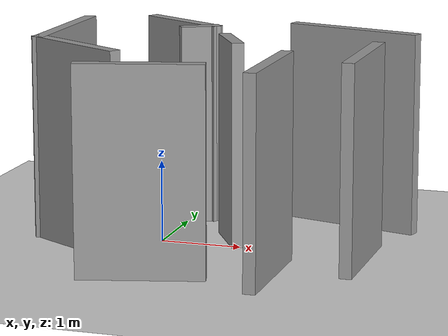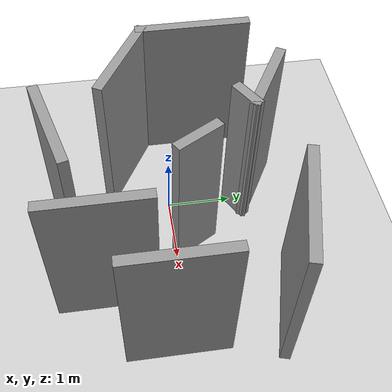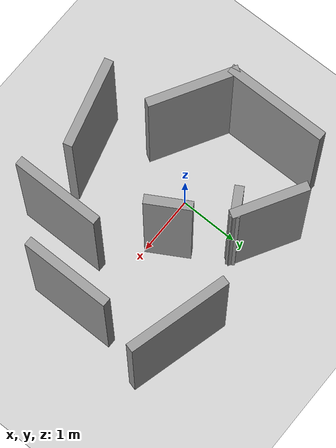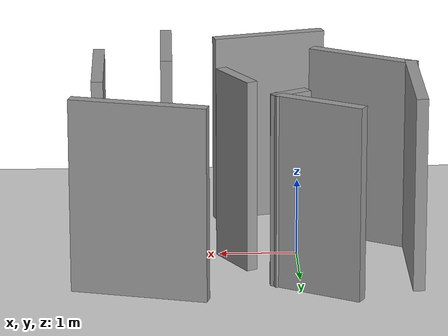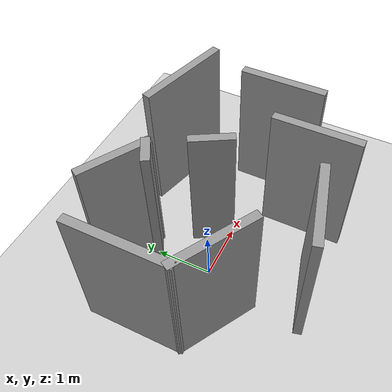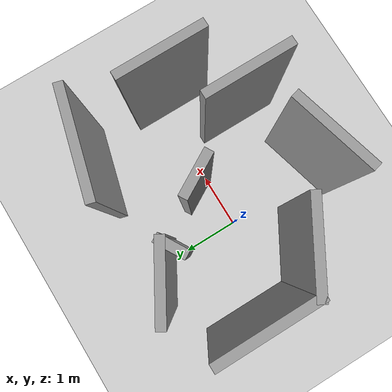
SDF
<sdf version="1.7">
 <world name="default">
  <light name="sun" type="directional">
   <pose>0 0 10 0 -0 0</pose>
   <diffuse>0.8 0.8 0.8 1</diffuse>
   <specular>0.2 0.2 0.2 1</specular>
   <attenuation>
    <range>1000</range>
    <constant>0.9</constant>
    <linear>0.01</linear>
    <quadratic>0.001</quadratic>
   </attenuation>
   <direction>-0.5 0.1 -0.9</direction>
   <spot><inner_angle>0</inner_angle><outer_angle>0</outer_angle><falloff>0</falloff></spot>
  </light>
  <model name="ground_plane">
   <static>1</static>
   <link name="link">
    <collision name="collision">
     <geometry><plane><normal>0 0 1</normal><size>100 100</size></plane></geometry>
     <surface>
      <contact><collide_bitmask>65535</collide_bitmask></contact>
      <friction><ode><mu>100</mu><mu2>50</mu2></ode></friction>
     </surface>
    </collision>
    <visual name="visual">
     <cast_shadows>0</cast_shadows>
     <geometry><plane><normal>0 0 1</normal><size>100 100</size></plane></geometry>
     <material>
      <script><uri>file://media/materials/scripts/gazebo.material</uri><name>Gazebo/Grey</name></script>
     </material>
    </visual>
   </link>
  </model>
  <gravity>0 0 -9.8</gravity>
  <magnetic_field>6e-06 2.3e-05 -4.2e-05</magnetic_field>
  <atmosphere type="adiabatic"/>
  <physics type="ode">
   <max_step_size>0.001</max_step_size>
   <real_time_factor>1</real_time_factor>
   <real_time_update_rate>1000</real_time_update_rate>
  </physics>
  <scene><ambient>0.4 0.4 0.4 1</ambient><background>0.7 0.7 0.7 1</background><shadows>1</shadows></scene>
  <audio><device>default</device></audio>
  <spherical_coordinates>
   <surface_model>EARTH_WGS84</surface_model>
   <latitude_deg>0</latitude_deg>
   <longitude_deg>0</longitude_deg>
   <elevation>0</elevation>
   <heading_deg>0</heading_deg>
  </spherical_coordinates>
  <model name="Untitled">
   <pose>0.659272 0.490936 0 0 -0 0</pose>
   <link name="Wall_0">
    <collision name="Wall_0_Collision">
     <geometry><box><size>1.75 0.15 2.5</size></box></geometry>
     <pose>0 0 1.25 0 -0 0</pose>
    </collision>
    <visual name="Wall_0_Visual">
     <pose>0 0 1.25 0 -0 0</pose>
     <geometry><box><size>1.75 0.15 2.5</size></box></geometry>
     <material>
      <script><uri>file://media/materials/scripts/gazebo.material</uri><name>Gazebo/Grey</name></script>
      <ambient>1 1 1 1</ambient>
     </material>
     <meta><layer>0</layer></meta>
    </visual>
    <pose>-2.12244 0.075928 0 0 -0 -1.5708</pose>
   </link>
   <link name="Wall_1">
    <collision name="Wall_1_Collision">
     <geometry><box><size>1.5 0.15 2.5</size></box></geometry>
     <pose>0 0 1.25 0 -0 0</pose>
    </collision>
    <visual name="Wall_1_Visual">
     <pose>0 0 1.25 0 -0 0</pose>
     <geometry><box><size>1.5 0.15 2.5</size></box></geometry>
     <material>
      <script><uri>file://media/materials/scripts/gazebo.material</uri><name>Gazebo/Grey</name></script>
      <ambient>1 1 1 1</ambient>
     </material>
     <meta><layer>0</layer></meta>
    </visual>
    <pose>-1.53788 -1.06157 0 0 -0 -0.523599</pose>
   </link>
   <link name="Wall_11">
    <collision name="Wall_11_Collision">
     <geometry><box><size>1.5 0.15 2.5</size></box></geometry>
     <pose>0 0 1.25 0 -0 0</pose>
    </collision>
    <visual name="Wall_11_Visual">
     <pose>0 0 1.25 0 -0 0</pose>
     <geometry><box><size>1.5 0.15 2.5</size></box></geometry>
     <material>
      <script><uri>file://media/materials/scripts/gazebo.material</uri><name>Gazebo/Grey</name></script>
      <ambient>1 1 1 1</ambient>
     </material>
     <meta><layer>0</layer></meta>
    </visual>
    <pose>1.00756 -1.58907 0 0 -0 -1.5708</pose>
   </link>
   <link name="Wall_13">
    <collision name="Wall_13_Collision">
     <geometry><box><size>1.25 0.15 2.5</size></box></geometry>
     <pose>0 0 1.25 0 -0 0</pose>
    </collision>
    <visual name="Wall_13_Visual">
     <pose>0 0 1.25 0 -0 0</pose>
     <geometry><box><size>1.25 0.15 2.5</size></box></geometry>
     <material>
      <script><uri>file://media/materials/scripts/gazebo.material</uri><name>Gazebo/Grey</name></script>
      <ambient>1 1 1 1</ambient>
     </material>
     <meta><layer>0</layer></meta>
    </visual>
    <pose>-0.846129 0.950928 0 0 -0 -0.523599</pose>
   </link>
   <link name="Wall_15">
    <collision name="Wall_15_Collision">
     <geometry><box><size>0.5 0.15 2.5</size></box></geometry>
     <pose>0 0 1.25 0 -0 0</pose>
    </collision>
    <visual name="Wall_15_Visual">
     <pose>0 0 1.25 0 -0 0</pose>
     <geometry><box><size>0.5 0.15 2.5</size></box></geometry>
     <material>
      <script><uri>file://media/materials/scripts/gazebo.material</uri><name>Gazebo/Grey</name></script>
      <ambient>1 1 1 1</ambient>
     </material>
     <meta><layer>0</layer></meta>
    </visual>
    <pose>-0.521369 0.588428 0 0 -0 -2.61799</pose>
   </link>
   <link name="Wall_3">
    <collision name="Wall_3_Collision">
     <geometry><box><size>0.75 0.15 2.5</size></box></geometry>
     <pose>0 0 1.25 0 -0 0</pose>
    </collision>
    <visual name="Wall_3_Visual">
     <pose>0 0 1.25 0 -0 0</pose>
     <geometry><box><size>0.75 0.15 2.5</size></box></geometry>
     <material>
      <script><uri>file://media/materials/scripts/gazebo.material</uri><name>Gazebo/Grey</name></script>
      <ambient>1 1 1 1</ambient>
     </material>
     <meta><layer>0</layer></meta>
    </visual>
    <pose>0.127557 -0.19388 0 0 -0 -1.0472</pose>
   </link>
   <link name="Wall_5">
    <collision name="Wall_5_Collision">
     <geometry><box><size>1.5 0.15 2.5</size></box></geometry>
     <pose>0 0 1.25 0 -0 0</pose>
    </collision>
    <visual name="Wall_5_Visual">
     <pose>0 0 1.25 0 -0 0</pose>
     <geometry><box><size>1.5 0.15 2.5</size></box></geometry>
     <material>
      <script><uri>file://media/materials/scripts/gazebo.material</uri><name>Gazebo/Grey</name></script>
      <ambient>1 1 1 1</ambient>
     </material>
     <meta><layer>0</layer></meta>
    </visual>
    <pose>-0.350443 -2.11937 0 0 -0 0.261799</pose>
   </link>
   <link name="Wall_7">
    <collision name="Wall_7_Collision">
     <geometry><box><size>1.75 0.15 2.5</size></box></geometry>
     <pose>0 0 1.25 0 -0 0</pose>
    </collision>
    <visual name="Wall_7_Visual">
     <pose>0 0 1.25 0 -0 0</pose>
     <geometry><box><size>1.75 0.15 2.5</size></box></geometry>
     <material>
      <script><uri>file://media/materials/scripts/gazebo.material</uri><name>Gazebo/Grey</name></script>
      <ambient>1 1 1 1</ambient>
     </material>
     <meta><layer>0</layer></meta>
    </visual>
    <pose>1.3603 0.978873 0 0 -0 -0.261799</pose>
   </link>
   <link name="Wall_9">
    <collision name="Wall_9_Collision">
     <geometry><box><size>1.5 0.15 2.5</size></box></geometry>
     <pose>0 0 1.25 0 -0 0</pose>
    </collision>
    <visual name="Wall_9_Visual">
     <pose>0 0 1.25 0 -0 0</pose>
     <geometry><box><size>1.5 0.15 2.5</size></box></geometry>
     <material>
      <script><uri>file://media/materials/scripts/gazebo.material</uri><name>Gazebo/Grey</name></script>
      <ambient>1 1 1 1</ambient>
     </material>
     <meta><layer>0</layer></meta>
    </visual>
    <pose>1.87756 -0.679072 0 0 -0 -1.5708</pose>
   </link>
   <static>1</static>
  </model>
 </world>
</sdf>
